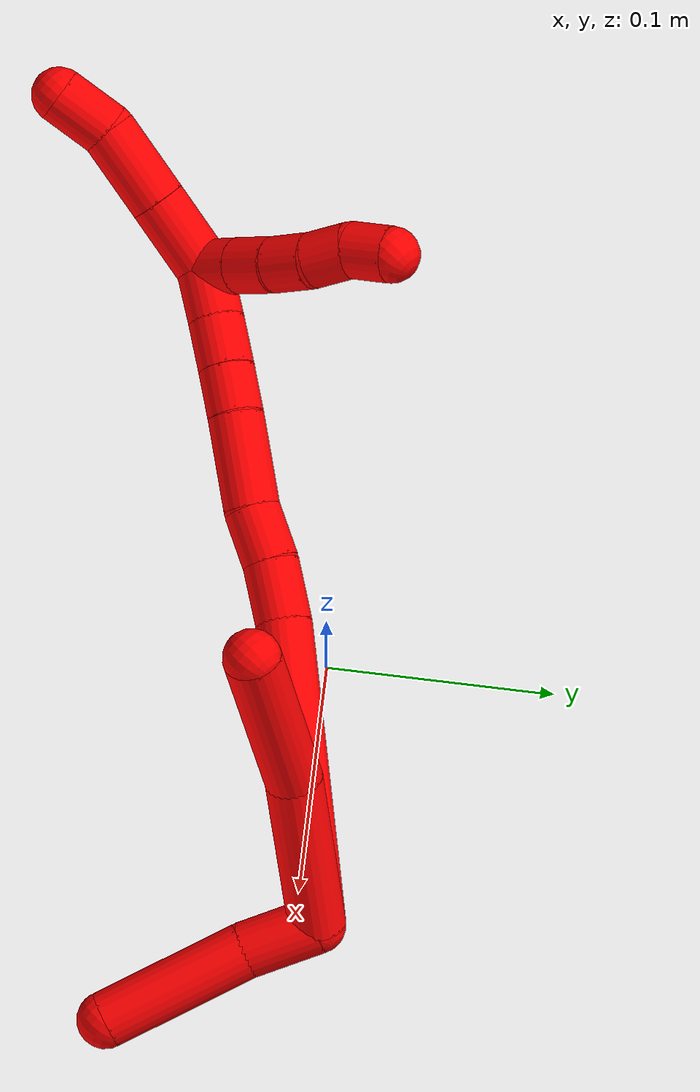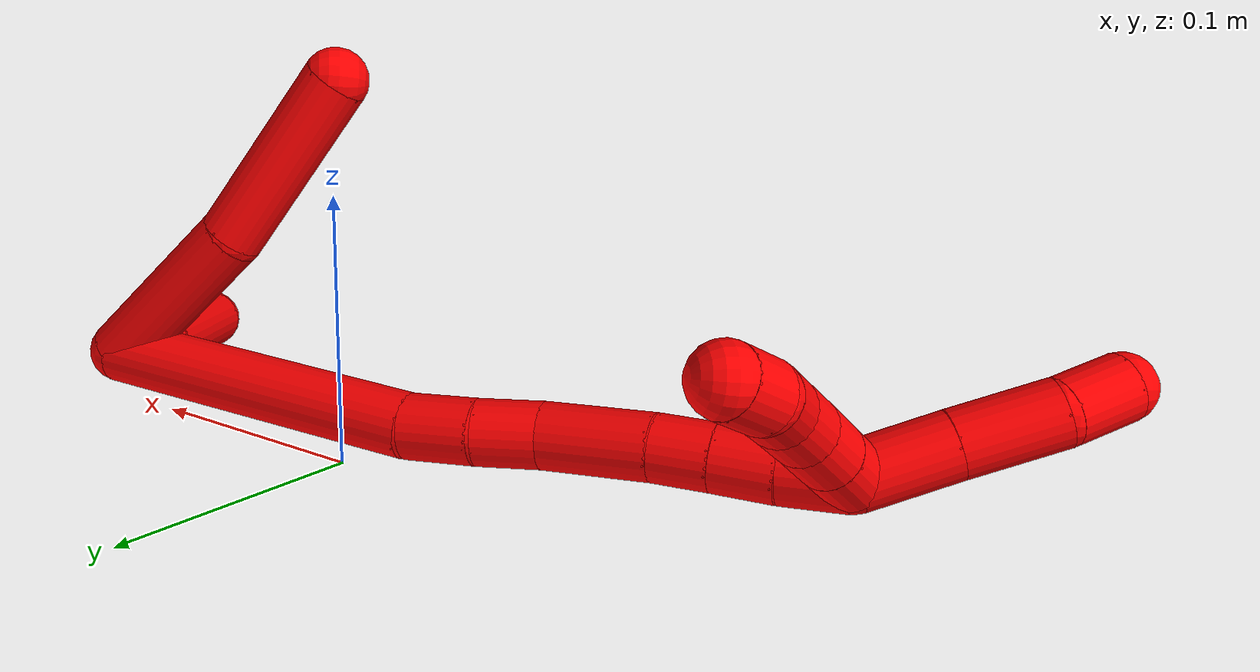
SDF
<sdf version="1.7">
 <world name="default">
  <model name="bin">
   <static>1</static>
   <link name="bottom">
    <collision name="collision-bottom">
     <pose>0 0 -0.01 0 -0 0</pose>
     <geometry><box><size>0.8 0.6 0.02</size></box></geometry>
     <surface>
      <friction><ode><mu>100</mu><mu2>100</mu2></ode></friction>
      <contact><collide_bitmask>65535</collide_bitmask></contact>
     </surface>
    </collision>
   </link>
   <link name="west_wall">
    <collision name="collision-west_wall">
     <pose>-0.41 0 0.1 0 -0 0</pose>
     <geometry><box><size>0.02 0.6 0.2</size></box></geometry>
     <surface>
      <friction><ode><mu>100</mu><mu2>100</mu2></ode></friction>
      <contact><collide_bitmask>65535</collide_bitmask></contact>
     </surface>
    </collision>
   </link>
   <link name="east_wall">
    <collision name="collision-east_wall">
     <pose>0.41 0 0.1 0 -0 0</pose>
     <geometry><box><size>0.02 0.6 0.2</size></box></geometry>
     <surface>
      <friction><ode><mu>100</mu><mu2>100</mu2></ode></friction>
      <contact><collide_bitmask>65535</collide_bitmask></contact>
     </surface>
    </collision>
   </link>
   <link name="south_wall">
    <collision name="collision-south_wall">
     <pose>0 -0.31 0.1 0 -0 0</pose>
     <geometry><box><size>0.8 0.02 0.2</size></box></geometry>
     <surface>
      <friction><ode><mu>100</mu><mu2>100</mu2></ode></friction>
      <contact><collide_bitmask>65535</collide_bitmask></contact>
     </surface>
    </collision>
   </link>
   <link name="north_wall">
    <collision name="collision-north_wall">
     <pose>0 0.31 0.1 0 -0 0</pose>
     <geometry><box><size>0.8 0.02 0.2</size></box></geometry>
     <surface>
      <friction><ode><mu>100</mu><mu2>100</mu2></ode></friction>
      <contact><collide_bitmask>65535</collide_bitmask></contact>
     </surface>
    </collision>
   </link>
  </model>
  <model name="2">
   <static>0</static>
   <link name="2">
    <collision name="collision-cylinder-e_1_2_8">
     <pose>-0.003497 0.032329 0.019297 -1.03266 -0.092627 0.052609</pose>
     <geometry><cylinder><radius>0.0125</radius><length>0.075625</length></cylinder></geometry>
     <surface>
      <friction><ode><mu>1.16</mu><mu2>1.16</mu2><slip1>0</slip1><slip2>0</slip2></ode></friction>
      <contact><ode><kp>1e+06</kp><kd>1</kd><max_vel>0</max_vel><min_depth>0.001</min_depth></ode></contact>
     </surface>
    </collision>
    <visual name="visual-cylinder-e_1_2_8">
     <pose>-0.003497 0.032329 0.019297 -1.03266 -0.092627 0.052609</pose>
     <geometry><cylinder><radius>0.0125</radius><length>0.075625</length></cylinder></geometry>
     <material><ambient>1 0 0 1</ambient></material>
    </visual>
    <collision name="collision-cylinder-e_2_8_6">
     <pose>-0.001977 0.097696 0.05491 -1.11208 0.135352 -0.084193</pose>
     <geometry><cylinder><radius>0.0125</radius><length>0.074375</length></cylinder></geometry>
     <surface>
      <friction><ode><mu>1.16</mu><mu2>1.16</mu2><slip1>0</slip1><slip2>0</slip2></ode></friction>
      <contact><ode><kp>1e+06</kp><kd>1</kd><max_vel>0</max_vel><min_depth>0.001</min_depth></ode></contact>
     </surface>
    </collision>
    <visual name="visual-cylinder-e_2_8_6">
     <pose>-0.001977 0.097696 0.05491 -1.11208 0.135352 -0.084193</pose>
     <geometry><cylinder><radius>0.0125</radius><length>0.074375</length></cylinder></geometry>
     <material><ambient>1 0 0 1</ambient></material>
    </visual>
    <collision name="collision-cylinder-e_1_2_9">
     <pose>0.012408 -0.007642 0.007701 0.781595 0.852314 0.369794</pose>
     <geometry><cylinder><radius>0.0125</radius><length>0.032964</length></cylinder></geometry>
     <surface>
      <friction><ode><mu>1.16</mu><mu2>1.16</mu2><slip1>0</slip1><slip2>0</slip2></ode></friction>
      <contact><ode><kp>1e+06</kp><kd>1</kd><max_vel>0</max_vel><min_depth>0.001</min_depth></ode></contact>
     </surface>
    </collision>
    <visual name="visual-cylinder-e_1_2_9">
     <pose>0.012408 -0.007642 0.007701 0.781595 0.852314 0.369794</pose>
     <geometry><cylinder><radius>0.0125</radius><length>0.032964</length></cylinder></geometry>
     <material><ambient>1 0 0 1</ambient></material>
    </visual>
    <collision name="collision-cylinder-e_2_9_5">
     <pose>0.053033 -0.02934 0.026787 0.889934 1.00074 0.510123</pose>
     <geometry><cylinder><radius>0.0125</radius><length>0.067036</length></cylinder></geometry>
     <surface>
      <friction><ode><mu>1.16</mu><mu2>1.16</mu2><slip1>0</slip1><slip2>0</slip2></ode></friction>
      <contact><ode><kp>1e+06</kp><kd>1</kd><max_vel>0</max_vel><min_depth>0.001</min_depth></ode></contact>
     </surface>
    </collision>
    <visual name="visual-cylinder-e_2_9_5">
     <pose>0.053033 -0.02934 0.026787 0.889934 1.00074 0.510123</pose>
     <geometry><cylinder><radius>0.0125</radius><length>0.067036</length></cylinder></geometry>
     <material><ambient>1 0 0 1</ambient></material>
    </visual>
    <collision name="collision-cylinder-e_1_2_10">
     <pose>-0.039152 0.016698 0.052619 -0.307283 -0.616888 0.098602</pose>
     <geometry><cylinder><radius>0.0125</radius><length>0.135358</length></cylinder></geometry>
     <surface>
      <friction><ode><mu>1.16</mu><mu2>1.16</mu2><slip1>0</slip1><slip2>0</slip2></ode></friction>
      <contact><ode><kp>1e+06</kp><kd>1</kd><max_vel>0</max_vel><min_depth>0.001</min_depth></ode></contact>
     </surface>
    </collision>
    <visual name="visual-cylinder-e_1_2_10">
     <pose>-0.039152 0.016698 0.052619 -0.307283 -0.616888 0.098602</pose>
     <geometry><cylinder><radius>0.0125</radius><length>0.135358</length></cylinder></geometry>
     <material><ambient>1 0 0 1</ambient></material>
    </visual>
    <collision name="collision-cylinder-e_2_10_11">
     <pose>-0.084565 0.038009 0.11666 -0.383837 -0.470178 0.093014</pose>
     <geometry><cylinder><radius>0.0125</radius><length>0.027636</length></cylinder></geometry>
     <surface>
      <friction><ode><mu>1.16</mu><mu2>1.16</mu2><slip1>0</slip1><slip2>0</slip2></ode></friction>
      <contact><ode><kp>1e+06</kp><kd>1</kd><max_vel>0</max_vel><min_depth>0.001</min_depth></ode></contact>
     </surface>
    </collision>
    <visual name="visual-cylinder-e_2_10_11">
     <pose>-0.084565 0.038009 0.11666 -0.383837 -0.470178 0.093014</pose>
     <geometry><cylinder><radius>0.0125</radius><length>0.027636</length></cylinder></geometry>
     <material><ambient>1 0 0 1</ambient></material>
    </visual>
    <collision name="collision-cylinder-e_3_11_12">
     <pose>-0.095231 0.046287 0.13916 -0.319559 -0.361073 0.058812</pose>
     <geometry><cylinder><radius>0.0125</radius><length>0.024945</length></cylinder></geometry>
     <surface>
      <friction><ode><mu>1.16</mu><mu2>1.16</mu2><slip1>0</slip1><slip2>0</slip2></ode></friction>
      <contact><ode><kp>1e+06</kp><kd>1</kd><max_vel>0</max_vel><min_depth>0.001</min_depth></ode></contact>
     </surface>
    </collision>
    <visual name="visual-cylinder-e_3_11_12">
     <pose>-0.095231 0.046287 0.13916 -0.319559 -0.361073 0.058812</pose>
     <geometry><cylinder><radius>0.0125</radius><length>0.024945</length></cylinder></geometry>
     <material><ambient>1 0 0 1</ambient></material>
    </visual>
    <collision name="collision-cylinder-e_4_12_13">
     <pose>-0.109979 0.057146 0.1673 -0.398958 -0.509346 0.105162</pose>
     <geometry><cylinder><radius>0.0125</radius><length>0.042417</length></cylinder></geometry>
     <surface>
      <friction><ode><mu>1.16</mu><mu2>1.16</mu2><slip1>0</slip1><slip2>0</slip2></ode></friction>
      <contact><ode><kp>1e+06</kp><kd>1</kd><max_vel>0</max_vel><min_depth>0.001</min_depth></ode></contact>
     </surface>
    </collision>
    <visual name="visual-cylinder-e_4_12_13">
     <pose>-0.109979 0.057146 0.1673 -0.398958 -0.509346 0.105162</pose>
     <geometry><cylinder><radius>0.0125</radius><length>0.042417</length></cylinder></geometry>
     <material><ambient>1 0 0 1</ambient></material>
    </visual>
    <collision name="collision-cylinder-e_5_13_14">
     <pose>-0.125729 0.067314 0.193334 -0.320265 -0.519709 0.08583</pose>
     <geometry><cylinder><radius>0.0125</radius><length>0.021781</length></cylinder></geometry>
     <surface>
      <friction><ode><mu>1.16</mu><mu2>1.16</mu2><slip1>0</slip1><slip2>0</slip2></ode></friction>
      <contact><ode><kp>1e+06</kp><kd>1</kd><max_vel>0</max_vel><min_depth>0.001</min_depth></ode></contact>
     </surface>
    </collision>
    <visual name="visual-cylinder-e_5_13_14">
     <pose>-0.125729 0.067314 0.193334 -0.320265 -0.519709 0.08583</pose>
     <geometry><cylinder><radius>0.0125</radius><length>0.021781</length></cylinder></geometry>
     <material><ambient>1 0 0 1</ambient></material>
    </visual>
    <collision name="collision-cylinder-e_6_14_15">
     <pose>-0.136844 0.073184 0.21191 -0.292677 -0.517228 0.077942</pose>
     <geometry><cylinder><radius>0.0125</radius><length>0.02308</length></cylinder></geometry>
     <surface>
      <friction><ode><mu>1.16</mu><mu2>1.16</mu2><slip1>0</slip1><slip2>0</slip2></ode></friction>
      <contact><ode><kp>1e+06</kp><kd>1</kd><max_vel>0</max_vel><min_depth>0.001</min_depth></ode></contact>
     </surface>
    </collision>
    <visual name="visual-cylinder-e_6_14_15">
     <pose>-0.136844 0.073184 0.21191 -0.292677 -0.517228 0.077942</pose>
     <geometry><cylinder><radius>0.0125</radius><length>0.02308</length></cylinder></geometry>
     <material><ambient>1 0 0 1</ambient></material>
    </visual>
    <collision name="collision-cylinder-e_7_15_1">
     <pose>-0.148162 0.07987 0.23189 -0.35034 -0.47002 0.084701</pose>
     <geometry><cylinder><radius>0.0125</radius><length>0.024782</length></cylinder></geometry>
     <surface>
      <friction><ode><mu>1.16</mu><mu2>1.16</mu2><slip1>0</slip1><slip2>0</slip2></ode></friction>
      <contact><ode><kp>1e+06</kp><kd>1</kd><max_vel>0</max_vel><min_depth>0.001</min_depth></ode></contact>
     </surface>
    </collision>
    <visual name="visual-cylinder-e_7_15_1">
     <pose>-0.148162 0.07987 0.23189 -0.35034 -0.47002 0.084701</pose>
     <geometry><cylinder><radius>0.0125</radius><length>0.024782</length></cylinder></geometry>
     <material><ambient>1 0 0 1</ambient></material>
    </visual>
    <collision name="collision-cylinder-e_1_1_16">
     <pose>-0.155911 0.090357 0.235153 -2.3864 -0.215402 0.53226</pose>
     <geometry><cylinder><radius>0.0125</radius><length>0.02</length></cylinder></geometry>
     <surface>
      <friction><ode><mu>1.16</mu><mu2>1.16</mu2><slip1>0</slip1><slip2>0</slip2></ode></friction>
      <contact><ode><kp>1e+06</kp><kd>1</kd><max_vel>0</max_vel><min_depth>0.001</min_depth></ode></contact>
     </surface>
    </collision>
    <visual name="visual-cylinder-e_1_1_16">
     <pose>-0.155911 0.090357 0.235153 -2.3864 -0.215402 0.53226</pose>
     <geometry><cylinder><radius>0.0125</radius><length>0.02</length></cylinder></geometry>
     <material><ambient>1 0 0 1</ambient></material>
    </visual>
    <collision name="collision-cylinder-e_2_16_17">
     <pose>-0.160044 0.103684 0.220826 -2.39831 -0.200836 0.505951</pose>
     <geometry><cylinder><radius>0.0125</radius><length>0.02</length></cylinder></geometry>
     <surface>
      <friction><ode><mu>1.16</mu><mu2>1.16</mu2><slip1>0</slip1><slip2>0</slip2></ode></friction>
      <contact><ode><kp>1e+06</kp><kd>1</kd><max_vel>0</max_vel><min_depth>0.001</min_depth></ode></contact>
     </surface>
    </collision>
    <visual name="visual-cylinder-e_2_16_17">
     <pose>-0.160044 0.103684 0.220826 -2.39831 -0.200836 0.505951</pose>
     <geometry><cylinder><radius>0.0125</radius><length>0.02</length></cylinder></geometry>
     <material><ambient>1 0 0 1</ambient></material>
    </visual>
    <collision name="collision-cylinder-e_3_17_18">
     <pose>-0.165064 0.116895 0.206715 -2.37973 -0.307387 0.738172</pose>
     <geometry><cylinder><radius>0.0125</radius><length>0.02</length></cylinder></geometry>
     <surface>
      <friction><ode><mu>1.16</mu><mu2>1.16</mu2><slip1>0</slip1><slip2>0</slip2></ode></friction>
      <contact><ode><kp>1e+06</kp><kd>1</kd><max_vel>0</max_vel><min_depth>0.001</min_depth></ode></contact>
     </surface>
    </collision>
    <visual name="visual-cylinder-e_3_17_18">
     <pose>-0.165064 0.116895 0.206715 -2.37973 -0.307387 0.738172</pose>
     <geometry><cylinder><radius>0.0125</radius><length>0.02</length></cylinder></geometry>
     <material><ambient>1 0 0 1</ambient></material>
    </visual>
    <collision name="collision-cylinder-e_4_18_19">
     <pose>-0.172854 0.129959 0.193882 -2.31203 -0.496539 1.04472</pose>
     <geometry><cylinder><radius>0.0125</radius><length>0.02</length></cylinder></geometry>
     <surface>
      <friction><ode><mu>1.16</mu><mu2>1.16</mu2><slip1>0</slip1><slip2>0</slip2></ode></friction>
      <contact><ode><kp>1e+06</kp><kd>1</kd><max_vel>0</max_vel><min_depth>0.001</min_depth></ode></contact>
     </surface>
    </collision>
    <visual name="visual-cylinder-e_4_18_19">
     <pose>-0.172854 0.129959 0.193882 -2.31203 -0.496539 1.04472</pose>
     <geometry><cylinder><radius>0.0125</radius><length>0.02</length></cylinder></geometry>
     <material><ambient>1 0 0 1</ambient></material>
    </visual>
    <collision name="collision-cylinder-e_5_19_4">
     <pose>-0.18035 0.141416 0.17971 -2.59849 -0.276729 0.927521</pose>
     <geometry><cylinder><radius>0.0125</radius><length>0.02</length></cylinder></geometry>
     <surface>
      <friction><ode><mu>1.16</mu><mu2>1.16</mu2><slip1>0</slip1><slip2>0</slip2></ode></friction>
      <contact><ode><kp>1e+06</kp><kd>1</kd><max_vel>0</max_vel><min_depth>0.001</min_depth></ode></contact>
     </surface>
    </collision>
    <visual name="visual-cylinder-e_5_19_4">
     <pose>-0.18035 0.141416 0.17971 -2.59849 -0.276729 0.927521</pose>
     <geometry><cylinder><radius>0.0125</radius><length>0.02</length></cylinder></geometry>
     <material><ambient>1 0 0 1</ambient></material>
    </visual>
    <collision name="collision-cylinder-e_1_1_20">
     <pose>-0.153297 0.091379 0.258318 -0.448136 0.026774 -0.006102</pose>
     <geometry><cylinder><radius>0.0125</radius><length>0.035634</length></cylinder></geometry>
     <surface>
      <friction><ode><mu>1.16</mu><mu2>1.16</mu2><slip1>0</slip1><slip2>0</slip2></ode></friction>
      <contact><ode><kp>1e+06</kp><kd>1</kd><max_vel>0</max_vel><min_depth>0.001</min_depth></ode></contact>
     </surface>
    </collision>
    <visual name="visual-cylinder-e_1_1_20">
     <pose>-0.153297 0.091379 0.258318 -0.448136 0.026774 -0.006102</pose>
     <geometry><cylinder><radius>0.0125</radius><length>0.035634</length></cylinder></geometry>
     <material><ambient>1 0 0 1</ambient></material>
    </visual>
    <collision name="collision-cylinder-e_2_20_21">
     <pose>-0.152495 0.106955 0.291617 -0.427597 0.017158 -0.003725</pose>
     <geometry><cylinder><radius>0.0125</radius><length>0.037912</length></cylinder></geometry>
     <surface>
      <friction><ode><mu>1.16</mu><mu2>1.16</mu2><slip1>0</slip1><slip2>0</slip2></ode></friction>
      <contact><ode><kp>1e+06</kp><kd>1</kd><max_vel>0</max_vel><min_depth>0.001</min_depth></ode></contact>
     </surface>
    </collision>
    <visual name="visual-cylinder-e_2_20_21">
     <pose>-0.152495 0.106955 0.291617 -0.427597 0.017158 -0.003725</pose>
     <geometry><cylinder><radius>0.0125</radius><length>0.037912</length></cylinder></geometry>
     <material><ambient>1 0 0 1</ambient></material>
    </visual>
    <collision name="collision-cylinder-e_3_21_3">
     <pose>-0.148381 0.117912 0.321152 -0.246859 0.290517 -0.036293</pose>
     <geometry><cylinder><radius>0.0125</radius><length>0.026454</length></cylinder></geometry>
     <surface>
      <friction><ode><mu>1.16</mu><mu2>1.16</mu2><slip1>0</slip1><slip2>0</slip2></ode></friction>
      <contact><ode><kp>1e+06</kp><kd>1</kd><max_vel>0</max_vel><min_depth>0.001</min_depth></ode></contact>
     </surface>
    </collision>
    <visual name="visual-cylinder-e_3_21_3">
     <pose>-0.148381 0.117912 0.321152 -0.246859 0.290517 -0.036293</pose>
     <geometry><cylinder><radius>0.0125</radius><length>0.026454</length></cylinder></geometry>
     <material><ambient>1 0 0 1</ambient></material>
    </visual>
    <collision name="collision-sphere-3">
     <pose>-0.144592 0.121008 0.333441 0 -0 0</pose>
     <geometry><sphere><radius>0.0125</radius></sphere></geometry>
     <surface>
      <friction><ode><mu>1.16</mu><mu2>1.16</mu2><slip1>0</slip1><slip2>0</slip2></ode></friction>
      <contact><ode><kp>1e+06</kp><kd>1</kd><max_vel>0</max_vel><min_depth>0.001</min_depth></ode></contact>
     </surface>
    </collision>
    <visual name="visual-sphere-3">
     <pose>-0.144592 0.121008 0.333441 0 -0 0</pose>
     <geometry><sphere><radius>0.0125</radius></sphere></geometry>
     <material><ambient>1 0 0 1</ambient></material>
    </visual>
    <collision name="collision-sphere-21">
     <pose>-0.15217 0.114815 0.308864 0 -0 0</pose>
     <geometry><sphere><radius>0.0125</radius></sphere></geometry>
     <surface>
      <friction><ode><mu>1.16</mu><mu2>1.16</mu2><slip1>0</slip1><slip2>0</slip2></ode></friction>
      <contact><ode><kp>1e+06</kp><kd>1</kd><max_vel>0</max_vel><min_depth>0.001</min_depth></ode></contact>
     </surface>
    </collision>
    <visual name="visual-sphere-21">
     <pose>-0.15217 0.114815 0.308864 0 -0 0</pose>
     <geometry><sphere><radius>0.0125</radius></sphere></geometry>
     <material><ambient>1 0 0 1</ambient></material>
    </visual>
    <collision name="collision-sphere-20">
     <pose>-0.15282 0.099096 0.27437 0 -0 0</pose>
     <geometry><sphere><radius>0.0125</radius></sphere></geometry>
     <surface>
      <friction><ode><mu>1.16</mu><mu2>1.16</mu2><slip1>0</slip1><slip2>0</slip2></ode></friction>
      <contact><ode><kp>1e+06</kp><kd>1</kd><max_vel>0</max_vel><min_depth>0.001</min_depth></ode></contact>
     </surface>
    </collision>
    <visual name="visual-sphere-20">
     <pose>-0.15282 0.099096 0.27437 0 -0 0</pose>
     <geometry><sphere><radius>0.0125</radius></sphere></geometry>
     <material><ambient>1 0 0 1</ambient></material>
    </visual>
    <collision name="collision-sphere-4">
     <pose>-0.183082 0.146388 0.171475 0 -0 0</pose>
     <geometry><sphere><radius>0.0125</radius></sphere></geometry>
     <surface>
      <friction><ode><mu>1.16</mu><mu2>1.16</mu2><slip1>0</slip1><slip2>0</slip2></ode></friction>
      <contact><ode><kp>1e+06</kp><kd>1</kd><max_vel>0</max_vel><min_depth>0.001</min_depth></ode></contact>
     </surface>
    </collision>
    <visual name="visual-sphere-4">
     <pose>-0.183082 0.146388 0.171475 0 -0 0</pose>
     <geometry><sphere><radius>0.0125</radius></sphere></geometry>
     <material><ambient>1 0 0 1</ambient></material>
    </visual>
    <collision name="collision-sphere-10">
     <pose>-0.078305 0.033396 0.105238 0 -0 0</pose>
     <geometry><sphere><radius>0.0125</radius></sphere></geometry>
     <surface>
      <friction><ode><mu>1.16</mu><mu2>1.16</mu2><slip1>0</slip1><slip2>0</slip2></ode></friction>
      <contact><ode><kp>1e+06</kp><kd>1</kd><max_vel>0</max_vel><min_depth>0.001</min_depth></ode></contact>
     </surface>
    </collision>
    <visual name="visual-sphere-10">
     <pose>-0.078305 0.033396 0.105238 0 -0 0</pose>
     <geometry><sphere><radius>0.0125</radius></sphere></geometry>
     <material><ambient>1 0 0 1</ambient></material>
    </visual>
    <collision name="collision-sphere-5">
     <pose>0.081251 -0.043396 0.038174 0 -0 0</pose>
     <geometry><sphere><radius>0.0125</radius></sphere></geometry>
     <surface>
      <friction><ode><mu>1.16</mu><mu2>1.16</mu2><slip1>0</slip1><slip2>0</slip2></ode></friction>
      <contact><ode><kp>1e+06</kp><kd>1</kd><max_vel>0</max_vel><min_depth>0.001</min_depth></ode></contact>
     </surface>
    </collision>
    <visual name="visual-sphere-5">
     <pose>0.081251 -0.043396 0.038174 0 -0 0</pose>
     <geometry><sphere><radius>0.0125</radius></sphere></geometry>
     <material><ambient>1 0 0 1</ambient></material>
    </visual>
    <collision name="collision-sphere-6">
     <pose>0.003041 0.130735 0.071226 0 -0 0</pose>
     <geometry><sphere><radius>0.0125</radius></sphere></geometry>
     <surface>
      <friction><ode><mu>1.16</mu><mu2>1.16</mu2><slip1>0</slip1><slip2>0</slip2></ode></friction>
      <contact><ode><kp>1e+06</kp><kd>1</kd><max_vel>0</max_vel><min_depth>0.001</min_depth></ode></contact>
     </surface>
    </collision>
    <visual name="visual-sphere-6">
     <pose>0.003041 0.130735 0.071226 0 -0 0</pose>
     <geometry><sphere><radius>0.0125</radius></sphere></geometry>
     <material><ambient>1 0 0 1</ambient></material>
    </visual>
    <collision name="collision-sphere-9">
     <pose>0.024815 -0.015284 0.015401 0 -0 0</pose>
     <geometry><sphere><radius>0.0125</radius></sphere></geometry>
     <surface>
      <friction><ode><mu>1.16</mu><mu2>1.16</mu2><slip1>0</slip1><slip2>0</slip2></ode></friction>
      <contact><ode><kp>1e+06</kp><kd>1</kd><max_vel>0</max_vel><min_depth>0.001</min_depth></ode></contact>
     </surface>
    </collision>
    <visual name="visual-sphere-9">
     <pose>0.024815 -0.015284 0.015401 0 -0 0</pose>
     <geometry><sphere><radius>0.0125</radius></sphere></geometry>
     <material><ambient>1 0 0 1</ambient></material>
    </visual>
    <collision name="collision-sphere-2">
     <geometry><sphere><radius>0.0125</radius></sphere></geometry>
     <surface>
      <friction><ode><mu>1.16</mu><mu2>1.16</mu2><slip1>0</slip1><slip2>0</slip2></ode></friction>
      <contact><ode><kp>1e+06</kp><kd>1</kd><max_vel>0</max_vel><min_depth>0.001</min_depth></ode></contact>
     </surface>
    </collision>
    <visual name="visual-sphere-2">
     <geometry><sphere><radius>0.0125</radius></sphere></geometry>
     <material><ambient>1 0 0 1</ambient></material>
    </visual>
    <collision name="collision-sphere-19">
     <pose>-0.177618 0.136445 0.187945 0 -0 0</pose>
     <geometry><sphere><radius>0.0125</radius></sphere></geometry>
     <surface>
      <friction><ode><mu>1.16</mu><mu2>1.16</mu2><slip1>0</slip1><slip2>0</slip2></ode></friction>
      <contact><ode><kp>1e+06</kp><kd>1</kd><max_vel>0</max_vel><min_depth>0.001</min_depth></ode></contact>
     </surface>
    </collision>
    <visual name="visual-sphere-19">
     <pose>-0.177618 0.136445 0.187945 0 -0 0</pose>
     <geometry><sphere><radius>0.0125</radius></sphere></geometry>
     <material><ambient>1 0 0 1</ambient></material>
    </visual>
    <collision name="collision-sphere-8">
     <pose>-0.006995 0.064658 0.038594 0 -0 0</pose>
     <geometry><sphere><radius>0.0125</radius></sphere></geometry>
     <surface>
      <friction><ode><mu>1.16</mu><mu2>1.16</mu2><slip1>0</slip1><slip2>0</slip2></ode></friction>
      <contact><ode><kp>1e+06</kp><kd>1</kd><max_vel>0</max_vel><min_depth>0.001</min_depth></ode></contact>
     </surface>
    </collision>
    <visual name="visual-sphere-8">
     <pose>-0.006995 0.064658 0.038594 0 -0 0</pose>
     <geometry><sphere><radius>0.0125</radius></sphere></geometry>
     <material><ambient>1 0 0 1</ambient></material>
    </visual>
    <collision name="collision-sphere-11">
     <pose>-0.090825 0.042622 0.128082 0 -0 0</pose>
     <geometry><sphere><radius>0.0125</radius></sphere></geometry>
     <surface>
      <friction><ode><mu>1.16</mu><mu2>1.16</mu2><slip1>0</slip1><slip2>0</slip2></ode></friction>
      <contact><ode><kp>1e+06</kp><kd>1</kd><max_vel>0</max_vel><min_depth>0.001</min_depth></ode></contact>
     </surface>
    </collision>
    <visual name="visual-sphere-11">
     <pose>-0.090825 0.042622 0.128082 0 -0 0</pose>
     <geometry><sphere><radius>0.0125</radius></sphere></geometry>
     <material><ambient>1 0 0 1</ambient></material>
    </visual>
    <collision name="collision-sphere-12">
     <pose>-0.099638 0.049953 0.150237 0 -0 0</pose>
     <geometry><sphere><radius>0.0125</radius></sphere></geometry>
     <surface>
      <friction><ode><mu>1.16</mu><mu2>1.16</mu2><slip1>0</slip1><slip2>0</slip2></ode></friction>
      <contact><ode><kp>1e+06</kp><kd>1</kd><max_vel>0</max_vel><min_depth>0.001</min_depth></ode></contact>
     </surface>
    </collision>
    <visual name="visual-sphere-12">
     <pose>-0.099638 0.049953 0.150237 0 -0 0</pose>
     <geometry><sphere><radius>0.0125</radius></sphere></geometry>
     <material><ambient>1 0 0 1</ambient></material>
    </visual>
    <collision name="collision-sphere-13">
     <pose>-0.12032 0.064339 0.184362 0 -0 0</pose>
     <geometry><sphere><radius>0.0125</radius></sphere></geometry>
     <surface>
      <friction><ode><mu>1.16</mu><mu2>1.16</mu2><slip1>0</slip1><slip2>0</slip2></ode></friction>
      <contact><ode><kp>1e+06</kp><kd>1</kd><max_vel>0</max_vel><min_depth>0.001</min_depth></ode></contact>
     </surface>
    </collision>
    <visual name="visual-sphere-13">
     <pose>-0.12032 0.064339 0.184362 0 -0 0</pose>
     <geometry><sphere><radius>0.0125</radius></sphere></geometry>
     <material><ambient>1 0 0 1</ambient></material>
    </visual>
    <collision name="collision-sphere-14">
     <pose>-0.131138 0.07029 0.202306 0 -0 0</pose>
     <geometry><sphere><radius>0.0125</radius></sphere></geometry>
     <surface>
      <friction><ode><mu>1.16</mu><mu2>1.16</mu2><slip1>0</slip1><slip2>0</slip2></ode></friction>
      <contact><ode><kp>1e+06</kp><kd>1</kd><max_vel>0</max_vel><min_depth>0.001</min_depth></ode></contact>
     </surface>
    </collision>
    <visual name="visual-sphere-14">
     <pose>-0.131138 0.07029 0.202306 0 -0 0</pose>
     <geometry><sphere><radius>0.0125</radius></sphere></geometry>
     <material><ambient>1 0 0 1</ambient></material>
    </visual>
    <collision name="collision-sphere-15">
     <pose>-0.14255 0.076078 0.221514 0 -0 0</pose>
     <geometry><sphere><radius>0.0125</radius></sphere></geometry>
     <surface>
      <friction><ode><mu>1.16</mu><mu2>1.16</mu2><slip1>0</slip1><slip2>0</slip2></ode></friction>
      <contact><ode><kp>1e+06</kp><kd>1</kd><max_vel>0</max_vel><min_depth>0.001</min_depth></ode></contact>
     </surface>
    </collision>
    <visual name="visual-sphere-15">
     <pose>-0.14255 0.076078 0.221514 0 -0 0</pose>
     <geometry><sphere><radius>0.0125</radius></sphere></geometry>
     <material><ambient>1 0 0 1</ambient></material>
    </visual>
    <collision name="collision-sphere-1">
     <pose>-0.153774 0.083662 0.242266 0 -0 0</pose>
     <geometry><sphere><radius>0.0125</radius></sphere></geometry>
     <surface>
      <friction><ode><mu>1.16</mu><mu2>1.16</mu2><slip1>0</slip1><slip2>0</slip2></ode></friction>
      <contact><ode><kp>1e+06</kp><kd>1</kd><max_vel>0</max_vel><min_depth>0.001</min_depth></ode></contact>
     </surface>
    </collision>
    <visual name="visual-sphere-1">
     <pose>-0.153774 0.083662 0.242266 0 -0 0</pose>
     <geometry><sphere><radius>0.0125</radius></sphere></geometry>
     <material><ambient>1 0 0 1</ambient></material>
    </visual>
    <collision name="collision-sphere-18">
     <pose>-0.16809 0.123474 0.199818 0 -0 0</pose>
     <geometry><sphere><radius>0.0125</radius></sphere></geometry>
     <surface>
      <friction><ode><mu>1.16</mu><mu2>1.16</mu2><slip1>0</slip1><slip2>0</slip2></ode></friction>
      <contact><ode><kp>1e+06</kp><kd>1</kd><max_vel>0</max_vel><min_depth>0.001</min_depth></ode></contact>
     </surface>
    </collision>
    <visual name="visual-sphere-18">
     <pose>-0.16809 0.123474 0.199818 0 -0 0</pose>
     <geometry><sphere><radius>0.0125</radius></sphere></geometry>
     <material><ambient>1 0 0 1</ambient></material>
    </visual>
    <collision name="collision-sphere-16">
     <pose>-0.158049 0.097053 0.22804 0 -0 0</pose>
     <geometry><sphere><radius>0.0125</radius></sphere></geometry>
     <surface>
      <friction><ode><mu>1.16</mu><mu2>1.16</mu2><slip1>0</slip1><slip2>0</slip2></ode></friction>
      <contact><ode><kp>1e+06</kp><kd>1</kd><max_vel>0</max_vel><min_depth>0.001</min_depth></ode></contact>
     </surface>
    </collision>
    <visual name="visual-sphere-16">
     <pose>-0.158049 0.097053 0.22804 0 -0 0</pose>
     <geometry><sphere><radius>0.0125</radius></sphere></geometry>
     <material><ambient>1 0 0 1</ambient></material>
    </visual>
    <collision name="collision-sphere-17">
     <pose>-0.162039 0.110315 0.213611 0 -0 0</pose>
     <geometry><sphere><radius>0.0125</radius></sphere></geometry>
     <surface>
      <friction><ode><mu>1.16</mu><mu2>1.16</mu2><slip1>0</slip1><slip2>0</slip2></ode></friction>
      <contact><ode><kp>1e+06</kp><kd>1</kd><max_vel>0</max_vel><min_depth>0.001</min_depth></ode></contact>
     </surface>
    </collision>
    <visual name="visual-sphere-17">
     <pose>-0.162039 0.110315 0.213611 0 -0 0</pose>
     <geometry><sphere><radius>0.0125</radius></sphere></geometry>
     <material><ambient>1 0 0 1</ambient></material>
    </visual>
    <inertial>
     <pose>-0.070063 0.055457 0.123784 0 -0 0</pose>
     <mass>0.75</mass>
     <inertia>
      <ixx>0.000322</ixx>
      <ixy>0</ixy>
      <ixz>0</ixz>
      <iyy>0.000348</iyy>
      <iyz>0</iyz>
      <izz>1.3e-05</izz>
     </inertia>
    </inertial>
   </link>
   <pose>0.116759 0.010058 0.024393 1.70126 -0.396043 -0.71069</pose>
  </model>
 </world>
</sdf>
